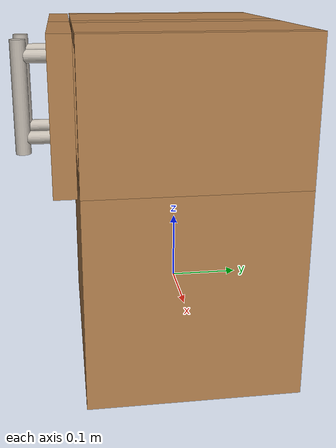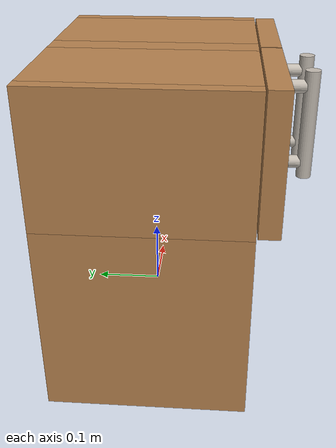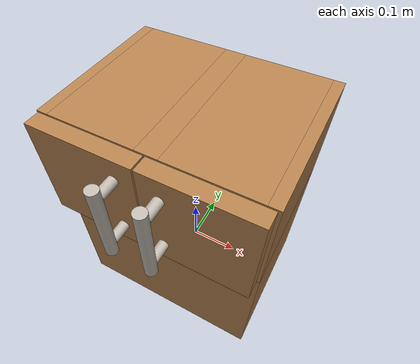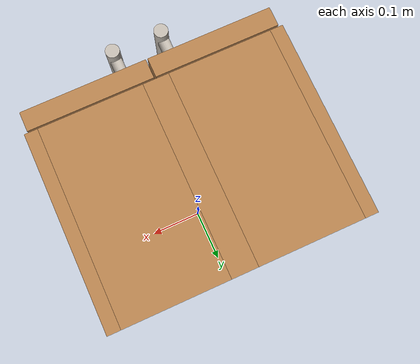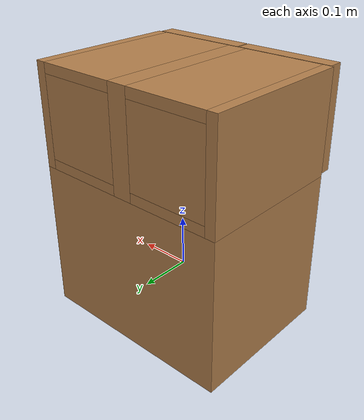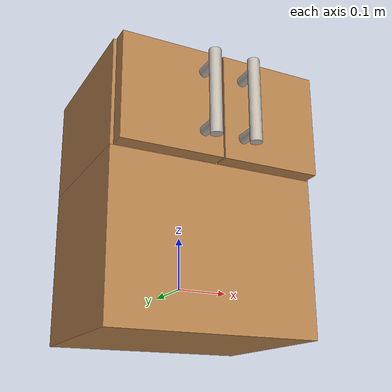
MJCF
<mujoco model="xarm7">
    <compiler angle="radian"/>
    <option integrator="implicitfast"/>

    <asset>
        <texture name="hinge_wood" type="cube" height="1" width="1" file="../assets/cabinet/wood1.png"/>
        <texture name="hinge_metal" type="cube" height="1" width="1" file="../assets/cabinet/metal0.png"/>

        <material name="hinge_wood" texture="hinge_wood" texrepeat="3 3" reflectance="0.7" shininess=".4" texuniform="false"/>
        <material name="hinge_metal" texture="hinge_metal" texrepeat="3 3" reflectance="0.7" shininess=".4" texuniform="false"/>
        <material name="hinge_blue" texture="hinge_wood" rgba="1 1 1 1" reflectance="0.7" shininess=".4" texuniform="false"/>
        <material name="hinge_collision_blue" rgba="0.3 0.3 1.0 0.5" shininess="0" specular="0"/>
    </asset>

    <default>
        <default class="hingecabinet">
            <joint damping="0.5" frictionloss="0.5" armature=".01" limited="true"/>
            <geom conaffinity="0" contype="0" group="1" material="hinge_wood" type="mesh"/>
            <default class="hinge_collision">
                <geom conaffinity="1" condim="3" contype="0" group="4" margin="0.001" material="hinge_collision_blue" solimp=".8 .9 .01" solref=".02 1"/>
            </default>
        </default>
    </default>

    <worldbody>
        <body name="hingecab" childclass="hingecabinet">
            <freejoint/>
            <geom material="hinge_blue" size="0.2 0.15 0.15" pos="0 0 0.05" type="box"/>
            <geom material="hinge_blue" pos="0 0 0.3" size="0.02 0.15 0.1" type="box"/>
            <geom material="hinge_blue" pos="0.19 0 0.3" size="0.01 0.15 0.1" type="box"/>
            <geom material="hinge_blue" pos="-0.19 0 0.3" size="0.01 0.15 0.1" type="box"/>
            <geom material="hinge_blue" pos="-0.1 0 0.39" size="0.08 0.15 0.01" type="box"/>
            <geom material="hinge_blue" pos="-0.1 0 0.21" size="0.08 0.15 0.01" type="box"/>
            <geom material="hinge_blue" pos="0.1 0 0.21" size="0.08 0.15 0.01" type="box"/>
            <geom material="hinge_blue" pos="0.1 0 0.39" size="0.08 0.15 0.01" type="box"/>
            <geom material="hinge_blue" pos="-0.1 0.14 0.3" size="0.08 0.01 0.08" type="box"/>
            <geom material="hinge_blue" pos="0.1 0.14 0.3" size="0.08 0.01 0.08" type="box"/>

            <geom class="hinge_collision" size="0.2 0.15 0.15" pos="0 0 0.05" type="box" mass="5."/>
            <geom class="hinge_collision" pos="0 0 0.3" size="0.02 0.15 0.1" type="box" mass=".3"/>
            <geom class="hinge_collision" pos="0.19 0 0.3" size="0.01 0.15 0.1" type="box" mass=".2"/>
            <geom class="hinge_collision" pos="-0.19 0 0.3" size="0.01 0.15 0.1" type="box" mass=".2"/>
            <geom class="hinge_collision" pos="-0.1 0 0.39" size="0.08 0.15 0.01" type="box" mass=".2"/>
            <geom class="hinge_collision" pos="-0.1 0 0.21" size="0.08 0.15 0.01" type="box" mass=".2"/>
            <geom class="hinge_collision" pos="0.1 0 0.21" size="0.08 0.15 0.01" type="box" mass=".2"/>
            <geom class="hinge_collision" pos="0.1 0 0.39" size="0.08 0.15 0.01" type="box" mass=".2"/>
            <geom class="hinge_collision" pos="-0.1 0.14 0.3" size="0.08 0.01 0.08" type="box" mass=".2"/>
            <geom class="hinge_collision" pos="0.1 0.14 0.3" size="0.08 0.01 0.08" type="box" mass=".2"/>
            <body name="hingeleftdoor" pos="-0.19 -0.16 0.3">
                <joint axis="0 0 1" name="leftdoorhinge" range="-1.57 0"/>
                <geom material="hinge_metal" pos="0.151 -0.064 0" size="0.011 0.08" type="cylinder"/>
                <geom material="hinge_metal" pos="0.151 -0.0305 0.057" euler="1.57 0 0" size="0.0095 0.0265 0.01" type="cylinder"/>
                <geom material="hinge_metal" pos="0.151 -0.0305 -0.057" euler="1.57 0 0" size="0.0095 0.0265 0.01" type="cylinder"/>
                <geom material="hinge_blue" pos="0.092 -0.0075 0" size="0.0965 0.015 0.1" type="box"/>

                <geom class="hinge_collision" pos="0.092 -0.0075 0" size="0.0965 0.015 0.1" type="box" mass=".2"/>
                <geom class="hinge_collision" pos="0.151 -0.064 0" size="0.011 0.08" type="cylinder" mass=".1"/>
                <geom class="hinge_collision" pos="0.151 -0.0305 0.057" euler="1.57 0 0" size="0.0095 0.0265 0.01" type="cylinder" mass=".02"/>
                <geom class="hinge_collision" pos="0.151 -0.0305 -0.057" euler="1.57 0 0" size="0.0095 0.0265 0.01" type="cylinder" mass=".02"/>
                <site type="sphere" name="leftdoor_site" pos="0.156 -0.064 0" size=".01" group="3" rgba="1 0 0 1"/>
            </body>
            <body name="hingerightdoor" pos="0.19 -0.16 0.3">
                <joint axis="0 0 1" name="rightdoorhinge" range="0 1.57"/>
                <geom material="hinge_blue" pos="-0.092 -0.0075 0" size="0.0965 0.015 0.1" type="box"/>
                <geom material="hinge_metal" pos="-0.151 -0.064 0" size="0.011 0.08" type="cylinder"/>
                <geom material="hinge_metal" pos="-0.151 -0.0305 0.057" euler="1.57 0 0" size="0.0095 0.0265 0.01" type="cylinder"/>
                <geom material="hinge_metal" pos="-0.151 -0.0305 -0.057" euler="1.57 0 0" size="0.0095 0.0265 0.01" type="cylinder"/>

                <geom class="hinge_collision" pos="-0.151 -0.064 0" size="0.011 0.08" type="cylinder" mass=".1"/>
                <geom class="hinge_collision" pos="-0.151 -0.0305 0.057" euler="1.57 0 0" size="0.0095 0.0265 0.01" type="cylinder" mass=".02"/>
                <geom class="hinge_collision" pos="-0.151 -0.0305 -0.057" euler="1.57 0 0" size="0.0095 0.0265 0.01" type="cylinder" mass=".02"/>
                <geom class="hinge_collision" pos="-0.092 -0.0075 0" size="0.0965 0.015 0.1" type="box" mass=".2"/>
                <site type="sphere" name="rightdoor_site" pos="-0.156 -0.064 0" size=".01" group="3" rgba="0 1 0 1"/>
            </body>
        </body>
    </worldbody>
</mujoco>
